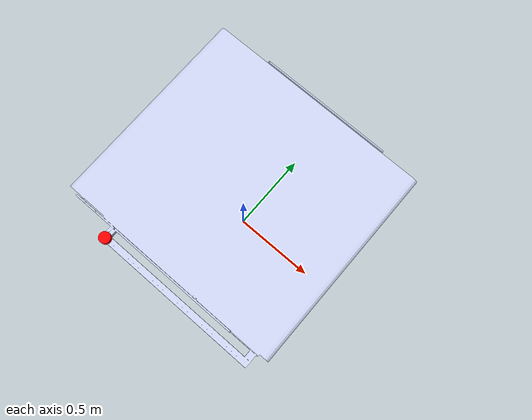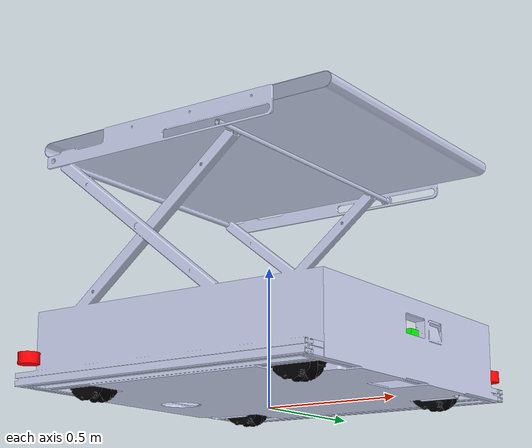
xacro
<?xml version="1.0"?>
<robot xmlns:xacro="http://www.ros.org/wiki/xacro" name="morosai_agv">

    <xacro:arg name="is_ignition" default="true" />

    <!-- Include Gazebo parameters -->
    <xacro:include filename="$(find morosai_description)/urdf/morosai_agv_gazebo.xacro"/>

    <!-- ROS2 Control -->
    <xacro:include filename="$(find morosai_description)/urdf/morosai_agv_ros2_control.xacro"/>

    <!-- Definizione delle dimensioni principali -->
    <xacro:property name="base_length" value="1.350"/>  <!-- Lunghezza 1312 mm X -->
    <xacro:property name="base_width" value="1.155"/>   <!-- Larghezza 1165 mm Y -->
    <xacro:property name="wheel_radius" value="0.081"/>   <!-- Raggio stimato della ruota -->

    <!-- Definizione parametri posizionamento ruote dai disegni CAD -->
    <xacro:property name="wheel_x_pos" value="0.4175"/>   <!-- Offset X dal centro -->
    <xacro:property name="wheel_y_pos" value="0.4425"/>  <!-- Offset Y dal centro (899/2) -->
    <xacro:property name="wheel_z_pos" value="0.05"/>    <!-- Altezza asse Z -->

    <link name="base_footprint"/>

    <link name="base_link">
         <inertial>
            <origin xyz="0 0 0" rpy="0 0 0"/>
            <mass value="265.0"/>
            <inertia
            ixx="41.3"
            ixy="-0.1034"
            ixz="0.04995"
            iyy="79.7"
            iyz="-0.0082"
            izz="41.1"/>
        </inertial>
        <visual>
            <origin rpy="0 0 3.14159" xyz="0 0 0"/>
            <geometry>
                <mesh filename="package://morosai_description/meshes/base_link.STL" />
            </geometry>
            <material name="blue">
                <color rgba="0.79216 0.81961 0.93333 1" />
            </material>
        </visual>
        <collision>
            <origin rpy= "0 0 0" xyz="0 0 0"/>
            <geometry>
                <mesh filename="package://morosai_description/meshes/agv_morosai-Light1_Telaio-Low.stl" />
            </geometry>
        </collision>
    </link>

    <joint name="base_joint" type="fixed">
        <parent link="base_footprint"/>
        <child link="base_link"/>
        <origin rpy="0 0 0" xyz="0 0 0.04"/>
    </joint>

    <!-- SENSORS -->
    <link name="tof_link">
        <visual>
            <origin xyz="0 0 0" rpy="0 0 0"/>
            <geometry>
                <box size="0.05 0.05 0.05"/>
            </geometry>
            <material name="green">
                <color rgba="0.0 1.0 0.0 1.0"/>
            </material>
        </visual>
    </link>

    <joint name="tof_camera_joint" type="fixed">
        <parent link="base_link"/>
        <child link="tof_link"/>
        <!-- INGEL CONFIG MINI AV  -->
        <!-- INGEL CONFIG BIG AGV  -->
        <origin xyz="0.5575 0 0.15" rpy="0 -1.57 3.14159"/>
    </joint>

    <link name="tof_optical_frame"/>

    <joint name="tof_optical_joint" type="fixed">
        <parent link="tof_link"/>
        <child link="tof_optical_frame"/>
        <origin xyz="0 0 0" rpy="0 0 1.5708"/>
    </joint>

    <!-- ==== LIDAR FRONT ==== -->
    <link name="lidar_front_link">
        <visual>
            <origin xyz="0 0 0" rpy="0 0 0"/>
            <geometry>
            <cylinder radius="0.0375" length="0.04"/>
            </geometry>
            <material name="red">
            <color rgba="1.0 0.0 0.0 1.0"/>
            </material>
        </visual>
    </link>

    <joint name="lidar_front_joint" type="fixed">
        <parent link="base_link"/>
        <child link="lidar_front_link"/>
        <!-- configurazione MINI AGV -->
        <origin xyz="0.540 0.637 0.098" rpy="0 0 3.14159"/>
    </joint>

    <!-- ==== LIDAR REAR ==== -->
    <link name="lidar_rear_link">
        <visual>
            <origin xyz="0 0 0" rpy="0 0 0"/>
            <geometry>
            <cylinder radius="0.0375" length="0.04"/>
            </geometry>
            <material name="red"/>
        </visual>
    </link>

    <joint name="lidar_rear_joint" type="fixed">
        <parent link="base_link"/>
        <child link="lidar_rear_link"/>
        <origin xyz="-0.540 -0.637 0.098" rpy="0 0 0"/>
    </joint>

    <!-- OPTICAL HEAD (PGV100 Reader)               -->
    <link name="optical_head_link">
        <visual>
            <origin xyz="0 0 0" rpy="0 0 0"/>
            <geometry>
                <box size="0.06808 0.06808 0.04998"/>
            </geometry>
            <material name="orange">
                <color rgba="1.0 0.5 0.0 1.0"/>
            </material>
        </visual>
    </link>

    <joint name="optical_head_joint" type="fixed">
        <parent link="base_link"/>
        <child link="optical_head_link"/>
        <origin xyz="0.4375 0.0 0.125" rpy="3.14159265359 0 0"/>
    </joint>

    <!-- WHEELS -->
    <!-- FRONT RIGHT -->
    <link name="wheel_front_right">
        <inertial>
            <origin xyz="0 -0.014 0" rpy="0 0 0"/>
            <mass value="2.91"/>
            <inertia
            ixx="0.00458012929964188"
            ixy="-8.16206171695503E-07"
            ixz="0.000741678448097534"
            iyy="0.00561604136708303"
            iyz="3.96551218314105E-06"
            izz="0.00479467479360652"/>
        </inertial>
        <visual>
            <origin rpy="-1.57 0 0" xyz="0 0 0"/>
            <geometry>
                <mesh filename="package://morosai_description/meshes/NM175A-Ruota.stl" scale="0.001 0.001 0.001"/>
            </geometry>
            <material name="black">
                <color rgba="0.0 0.0 0.0 1.0"/>
            </material>
        </visual>
        <collision>
            <origin rpy="-1.57 0 0" xyz="0 0 0"/>
            <geometry>
                <cylinder radius="0.05" length="0.05"/>
            </geometry>
        </collision>
    </link>

    <joint name="wheel_front_right_joint" type="fixed">
        <parent link="base_link"/>
        <child link="wheel_front_right"/>
        <origin rpy="0 0 0" xyz="${wheel_x_pos} ${-wheel_y_pos} ${wheel_z_pos}"/>
        <axis xyz="0 1 0"/>
    </joint>

    <gazebo reference="wheel_front_right">
        <mu1>100.0</mu1>
        <mu2>100.0</mu2>
        <kp>10000000.0</kp>
        <kd>1.0</kd>
    </gazebo>

    <!-- FRONT LEFT -->
    <link name="wheel_front_left">
        <inertial>
            <origin xyz="0 -0.014 0" rpy="0 0 0"/>
            <mass value="2.91"/>
            <inertia
            ixx="0.0045801"
            ixy="8.1621E-07"
            ixz="-0.00074168"
            iyy="0.005616"
            iyz="3.9655E-06"
            izz="0.0047947" />
        </inertial>
        <visual>
            <origin rpy="-1.57 0 0" xyz="0 0 0"/>
            <geometry>
                <mesh filename="package://morosai_description/meshes/NM175A-Ruota.stl" scale="0.001 0.001 0.001"/>
            </geometry>
            <material name="black">
                <color rgba="0.0 0.0 0.0 1.0"/>
            </material>
        </visual>
        <collision>
            <origin rpy="-1.57 0 0" xyz="0 0 0"/>
            <geometry>
                <cylinder radius="0.05" length="0.05"/>
            </geometry>
        </collision>
    </link>

    <joint name="wheel_front_left_joint" type="fixed">
        <parent link="base_link"/>
        <child link="wheel_front_left"/>
        <origin rpy="0 0 0" xyz="${wheel_x_pos} ${wheel_y_pos} ${wheel_z_pos}"/>
        <axis xyz="0 1 0"/>
    </joint>

    <gazebo reference="wheel_front_left">
        <mu1>100.0</mu1>
        <mu2>100.0</mu2>
        <kp>10000000.0</kp>
        <kd>1.0</kd>
    </gazebo>

    <!-- REAR RIGHT -->
    <link name="wheel_rear_right">
        <inertial>
            <origin xyz="0 -0.014 0" rpy="0 0 0"/>
            <mass value="2.91"/>
            <inertia
            ixx="0.00458012929965282"
            ixy="-8.16206173013403E-07"
            ixz="0.00074167844810129"
            iyy="0.00561604136709717"
            iyz="3.96551218697627E-06"
            izz="0.00479467479361136" />
        </inertial>
        <visual>
            <origin rpy="-1.57 0 0" xyz="0 0 0"/>
            <geometry>
                <mesh filename="package://morosai_description/meshes/NM175A-Ruota.stl" scale="0.001 0.001 0.001"/>
            </geometry>
            <material name="black">
                <color rgba="0.0 0.0 0.0 1.0"/>
            </material>
        </visual>
        <collision>
            <origin rpy="-1.57 0 0" xyz="0 0 0"/>
            <geometry>
                <cylinder radius="0.05" length="0.05"/>
            </geometry>
        </collision>
    </link>

    <joint name="wheel_rear_right_joint" type="fixed">
        <parent link="base_link"/>
        <child link="wheel_rear_right"/>
        <origin rpy="0 0 0" xyz="-${wheel_x_pos} -${wheel_y_pos} ${wheel_z_pos}"/>
        <axis xyz="0 1 0"/>
    </joint>

    <gazebo reference="wheel_rear_right">
        <mu1>100.0</mu1>
        <mu2>100.0</mu2>
        <kp>10000000.0</kp>
        <kd>1.0</kd>
    </gazebo>

    <!-- REAR LEFT -->
    <link name="wheel_rear_left">
        <inertial>
            <origin xyz="0 -0.014 0" rpy="0 0 0"/>
            <mass value="2.91"/>
            <inertia
            ixx="0.00458012929965168"
            ixy="8.16206173575887E-07"
            ixz="-0.000741678448102401"
            iyy="0.00561604136709495"
            iyz="3.96551218641184E-06"
            izz="0.00479467479361022" />
        </inertial>
        <visual>
            <origin rpy="-1.57 0 0" xyz="0 0 0"/>
            <geometry>
                <mesh filename="package://morosai_description/meshes/NM175A-Ruota.stl" scale="0.001 0.001 0.001"/>
            </geometry>
            <material name="black">
                <color rgba="0.0 0.0 0.0 1.0"/>
            </material>
        </visual>
        <collision>
            <origin rpy="-1.57 0 0" xyz="0 0 0"/>
            <geometry>
                <cylinder radius="0.05" length="0.05"/>
            </geometry>
        </collision>
    </link>

    <joint name="wheel_rear_left_joint" type="fixed">
        <parent link="base_link"/>
        <child link="wheel_rear_left"/>
        <origin rpy="0 0 0" xyz="-${wheel_x_pos} ${wheel_y_pos} ${wheel_z_pos}"/>
        <axis xyz="0 1 0"/>
    </joint>

    <gazebo reference="wheel_rear_left">
        <mu1>100.0</mu1>
        <mu2>100.0</mu2>
        <kp>10000000.0</kp>
        <kd>1.0</kd>
    </gazebo>

</robot>
